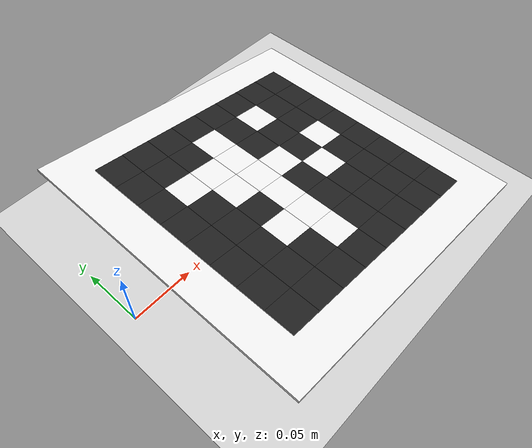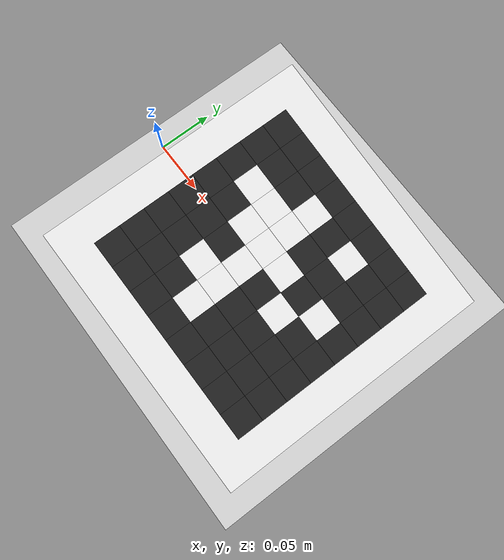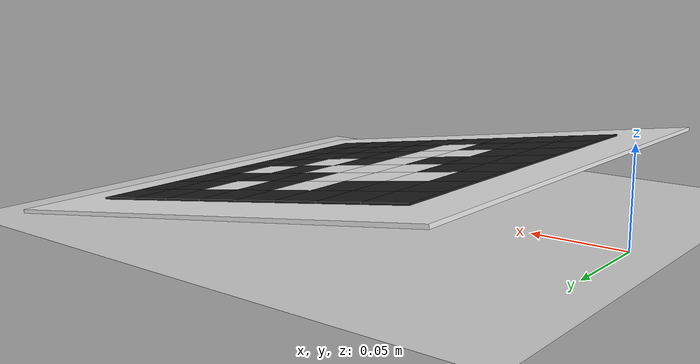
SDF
<?xml version="1.0"?>
<!-- Copyright 2026 EasyFly Project. SPDX-License-Identifier: Apache-2.0 -->
<sdf version="1.6">
  <world name="d5_precision_landing">
    <!-- Deterministic first-version visual fixture, not a lighting robustness test. -->
    <scene><shadows>false</shadows></scene>
    <include><uri>model://sun</uri></include>
    <include><uri>model://ground_plane</uri></include>
    <!-- Four native 1000Hz IMU samples feed the unchanged 250Hz MAVLink stream. -->
    <physics type="ode"><max_step_size>0.001</max_step_size><real_time_update_rate>1000</real_time_update_rate></physics>
    <model name="static_tag_7">
      <static>true</static>
      <pose>0.15 0 0.02 0 0.13962634015954636 0</pose>
      <link name="pad">
        <visual name="white_margin">
          <pose>0 0 -0.001 0 0 0</pose>
          <geometry><box><size>0.26 0.26 0.002</size></box></geometry>
          <material><script><uri>file://media/materials/scripts/gazebo.material</uri><name>Gazebo/White</name></script></material>
        </visual>
        <visual name="cell_0_0">
          <pose>-0.08750 0.08750 0.0005 0 0 0</pose>
          <geometry><box><size>0.025 0.025 0.001</size></box></geometry>
          <material><script><uri>file://media/materials/scripts/gazebo.material</uri><name>Gazebo/Black</name></script></material>
        </visual>
        <visual name="cell_0_1">
          <pose>-0.06250 0.08750 0.0005 0 0 0</pose>
          <geometry><box><size>0.025 0.025 0.001</size></box></geometry>
          <material><script><uri>file://media/materials/scripts/gazebo.material</uri><name>Gazebo/Black</name></script></material>
        </visual>
        <visual name="cell_0_2">
          <pose>-0.03750 0.08750 0.0005 0 0 0</pose>
          <geometry><box><size>0.025 0.025 0.001</size></box></geometry>
          <material><script><uri>file://media/materials/scripts/gazebo.material</uri><name>Gazebo/Black</name></script></material>
        </visual>
        <visual name="cell_0_3">
          <pose>-0.01250 0.08750 0.0005 0 0 0</pose>
          <geometry><box><size>0.025 0.025 0.001</size></box></geometry>
          <material><script><uri>file://media/materials/scripts/gazebo.material</uri><name>Gazebo/Black</name></script></material>
        </visual>
        <visual name="cell_0_4">
          <pose>0.01250 0.08750 0.0005 0 0 0</pose>
          <geometry><box><size>0.025 0.025 0.001</size></box></geometry>
          <material><script><uri>file://media/materials/scripts/gazebo.material</uri><name>Gazebo/Black</name></script></material>
        </visual>
        <visual name="cell_0_5">
          <pose>0.03750 0.08750 0.0005 0 0 0</pose>
          <geometry><box><size>0.025 0.025 0.001</size></box></geometry>
          <material><script><uri>file://media/materials/scripts/gazebo.material</uri><name>Gazebo/Black</name></script></material>
        </visual>
        <visual name="cell_0_6">
          <pose>0.06250 0.08750 0.0005 0 0 0</pose>
          <geometry><box><size>0.025 0.025 0.001</size></box></geometry>
          <material><script><uri>file://media/materials/scripts/gazebo.material</uri><name>Gazebo/Black</name></script></material>
        </visual>
        <visual name="cell_0_7">
          <pose>0.08750 0.08750 0.0005 0 0 0</pose>
          <geometry><box><size>0.025 0.025 0.001</size></box></geometry>
          <material><script><uri>file://media/materials/scripts/gazebo.material</uri><name>Gazebo/Black</name></script></material>
        </visual>
        <visual name="cell_1_0">
          <pose>-0.08750 0.06250 0.0005 0 0 0</pose>
          <geometry><box><size>0.025 0.025 0.001</size></box></geometry>
          <material><script><uri>file://media/materials/scripts/gazebo.material</uri><name>Gazebo/Black</name></script></material>
        </visual>
        <visual name="cell_1_1">
          <pose>-0.06250 0.06250 0.0005 0 0 0</pose>
          <geometry><box><size>0.025 0.025 0.001</size></box></geometry>
          <material><script><uri>file://media/materials/scripts/gazebo.material</uri><name>Gazebo/Black</name></script></material>
        </visual>
        <visual name="cell_1_2">
          <pose>-0.03750 0.06250 0.0005 0 0 0</pose>
          <geometry><box><size>0.025 0.025 0.001</size></box></geometry>
          <material><script><uri>file://media/materials/scripts/gazebo.material</uri><name>Gazebo/Black</name></script></material>
        </visual>
        <visual name="cell_1_3">
          <pose>-0.01250 0.06250 0.0005 0 0 0</pose>
          <geometry><box><size>0.025 0.025 0.001</size></box></geometry>
          <material><script><uri>file://media/materials/scripts/gazebo.material</uri><name>Gazebo/White</name></script></material>
        </visual>
        <visual name="cell_1_4">
          <pose>0.01250 0.06250 0.0005 0 0 0</pose>
          <geometry><box><size>0.025 0.025 0.001</size></box></geometry>
          <material><script><uri>file://media/materials/scripts/gazebo.material</uri><name>Gazebo/Black</name></script></material>
        </visual>
        <visual name="cell_1_5">
          <pose>0.03750 0.06250 0.0005 0 0 0</pose>
          <geometry><box><size>0.025 0.025 0.001</size></box></geometry>
          <material><script><uri>file://media/materials/scripts/gazebo.material</uri><name>Gazebo/White</name></script></material>
        </visual>
        <visual name="cell_1_6">
          <pose>0.06250 0.06250 0.0005 0 0 0</pose>
          <geometry><box><size>0.025 0.025 0.001</size></box></geometry>
          <material><script><uri>file://media/materials/scripts/gazebo.material</uri><name>Gazebo/Black</name></script></material>
        </visual>
        <visual name="cell_1_7">
          <pose>0.08750 0.06250 0.0005 0 0 0</pose>
          <geometry><box><size>0.025 0.025 0.001</size></box></geometry>
          <material><script><uri>file://media/materials/scripts/gazebo.material</uri><name>Gazebo/Black</name></script></material>
        </visual>
        <visual name="cell_2_0">
          <pose>-0.08750 0.03750 0.0005 0 0 0</pose>
          <geometry><box><size>0.025 0.025 0.001</size></box></geometry>
          <material><script><uri>file://media/materials/scripts/gazebo.material</uri><name>Gazebo/Black</name></script></material>
        </visual>
        <visual name="cell_2_1">
          <pose>-0.06250 0.03750 0.0005 0 0 0</pose>
          <geometry><box><size>0.025 0.025 0.001</size></box></geometry>
          <material><script><uri>file://media/materials/scripts/gazebo.material</uri><name>Gazebo/White</name></script></material>
        </visual>
        <visual name="cell_2_2">
          <pose>-0.03750 0.03750 0.0005 0 0 0</pose>
          <geometry><box><size>0.025 0.025 0.001</size></box></geometry>
          <material><script><uri>file://media/materials/scripts/gazebo.material</uri><name>Gazebo/White</name></script></material>
        </visual>
        <visual name="cell_2_3">
          <pose>-0.01250 0.03750 0.0005 0 0 0</pose>
          <geometry><box><size>0.025 0.025 0.001</size></box></geometry>
          <material><script><uri>file://media/materials/scripts/gazebo.material</uri><name>Gazebo/White</name></script></material>
        </visual>
        <visual name="cell_2_4">
          <pose>0.01250 0.03750 0.0005 0 0 0</pose>
          <geometry><box><size>0.025 0.025 0.001</size></box></geometry>
          <material><script><uri>file://media/materials/scripts/gazebo.material</uri><name>Gazebo/Black</name></script></material>
        </visual>
        <visual name="cell_2_5">
          <pose>0.03750 0.03750 0.0005 0 0 0</pose>
          <geometry><box><size>0.025 0.025 0.001</size></box></geometry>
          <material><script><uri>file://media/materials/scripts/gazebo.material</uri><name>Gazebo/Black</name></script></material>
        </visual>
        <visual name="cell_2_6">
          <pose>0.06250 0.03750 0.0005 0 0 0</pose>
          <geometry><box><size>0.025 0.025 0.001</size></box></geometry>
          <material><script><uri>file://media/materials/scripts/gazebo.material</uri><name>Gazebo/Black</name></script></material>
        </visual>
        <visual name="cell_2_7">
          <pose>0.08750 0.03750 0.0005 0 0 0</pose>
          <geometry><box><size>0.025 0.025 0.001</size></box></geometry>
          <material><script><uri>file://media/materials/scripts/gazebo.material</uri><name>Gazebo/Black</name></script></material>
        </visual>
        <visual name="cell_3_0">
          <pose>-0.08750 0.01250 0.0005 0 0 0</pose>
          <geometry><box><size>0.025 0.025 0.001</size></box></geometry>
          <material><script><uri>file://media/materials/scripts/gazebo.material</uri><name>Gazebo/Black</name></script></material>
        </visual>
        <visual name="cell_3_1">
          <pose>-0.06250 0.01250 0.0005 0 0 0</pose>
          <geometry><box><size>0.025 0.025 0.001</size></box></geometry>
          <material><script><uri>file://media/materials/scripts/gazebo.material</uri><name>Gazebo/Black</name></script></material>
        </visual>
        <visual name="cell_3_2">
          <pose>-0.03750 0.01250 0.0005 0 0 0</pose>
          <geometry><box><size>0.025 0.025 0.001</size></box></geometry>
          <material><script><uri>file://media/materials/scripts/gazebo.material</uri><name>Gazebo/White</name></script></material>
        </visual>
        <visual name="cell_3_3">
          <pose>-0.01250 0.01250 0.0005 0 0 0</pose>
          <geometry><box><size>0.025 0.025 0.001</size></box></geometry>
          <material><script><uri>file://media/materials/scripts/gazebo.material</uri><name>Gazebo/White</name></script></material>
        </visual>
        <visual name="cell_3_4">
          <pose>0.01250 0.01250 0.0005 0 0 0</pose>
          <geometry><box><size>0.025 0.025 0.001</size></box></geometry>
          <material><script><uri>file://media/materials/scripts/gazebo.material</uri><name>Gazebo/White</name></script></material>
        </visual>
        <visual name="cell_3_5">
          <pose>0.03750 0.01250 0.0005 0 0 0</pose>
          <geometry><box><size>0.025 0.025 0.001</size></box></geometry>
          <material><script><uri>file://media/materials/scripts/gazebo.material</uri><name>Gazebo/Black</name></script></material>
        </visual>
        <visual name="cell_3_6">
          <pose>0.06250 0.01250 0.0005 0 0 0</pose>
          <geometry><box><size>0.025 0.025 0.001</size></box></geometry>
          <material><script><uri>file://media/materials/scripts/gazebo.material</uri><name>Gazebo/White</name></script></material>
        </visual>
        <visual name="cell_3_7">
          <pose>0.08750 0.01250 0.0005 0 0 0</pose>
          <geometry><box><size>0.025 0.025 0.001</size></box></geometry>
          <material><script><uri>file://media/materials/scripts/gazebo.material</uri><name>Gazebo/Black</name></script></material>
        </visual>
        <visual name="cell_4_0">
          <pose>-0.08750 -0.01250 0.0005 0 0 0</pose>
          <geometry><box><size>0.025 0.025 0.001</size></box></geometry>
          <material><script><uri>file://media/materials/scripts/gazebo.material</uri><name>Gazebo/Black</name></script></material>
        </visual>
        <visual name="cell_4_1">
          <pose>-0.06250 -0.01250 0.0005 0 0 0</pose>
          <geometry><box><size>0.025 0.025 0.001</size></box></geometry>
          <material><script><uri>file://media/materials/scripts/gazebo.material</uri><name>Gazebo/Black</name></script></material>
        </visual>
        <visual name="cell_4_2">
          <pose>-0.03750 -0.01250 0.0005 0 0 0</pose>
          <geometry><box><size>0.025 0.025 0.001</size></box></geometry>
          <material><script><uri>file://media/materials/scripts/gazebo.material</uri><name>Gazebo/Black</name></script></material>
        </visual>
        <visual name="cell_4_3">
          <pose>-0.01250 -0.01250 0.0005 0 0 0</pose>
          <geometry><box><size>0.025 0.025 0.001</size></box></geometry>
          <material><script><uri>file://media/materials/scripts/gazebo.material</uri><name>Gazebo/White</name></script></material>
        </visual>
        <visual name="cell_4_4">
          <pose>0.01250 -0.01250 0.0005 0 0 0</pose>
          <geometry><box><size>0.025 0.025 0.001</size></box></geometry>
          <material><script><uri>file://media/materials/scripts/gazebo.material</uri><name>Gazebo/Black</name></script></material>
        </visual>
        <visual name="cell_4_5">
          <pose>0.03750 -0.01250 0.0005 0 0 0</pose>
          <geometry><box><size>0.025 0.025 0.001</size></box></geometry>
          <material><script><uri>file://media/materials/scripts/gazebo.material</uri><name>Gazebo/White</name></script></material>
        </visual>
        <visual name="cell_4_6">
          <pose>0.06250 -0.01250 0.0005 0 0 0</pose>
          <geometry><box><size>0.025 0.025 0.001</size></box></geometry>
          <material><script><uri>file://media/materials/scripts/gazebo.material</uri><name>Gazebo/Black</name></script></material>
        </visual>
        <visual name="cell_4_7">
          <pose>0.08750 -0.01250 0.0005 0 0 0</pose>
          <geometry><box><size>0.025 0.025 0.001</size></box></geometry>
          <material><script><uri>file://media/materials/scripts/gazebo.material</uri><name>Gazebo/Black</name></script></material>
        </visual>
        <visual name="cell_5_0">
          <pose>-0.08750 -0.03750 0.0005 0 0 0</pose>
          <geometry><box><size>0.025 0.025 0.001</size></box></geometry>
          <material><script><uri>file://media/materials/scripts/gazebo.material</uri><name>Gazebo/Black</name></script></material>
        </visual>
        <visual name="cell_5_1">
          <pose>-0.06250 -0.03750 0.0005 0 0 0</pose>
          <geometry><box><size>0.025 0.025 0.001</size></box></geometry>
          <material><script><uri>file://media/materials/scripts/gazebo.material</uri><name>Gazebo/Black</name></script></material>
        </visual>
        <visual name="cell_5_2">
          <pose>-0.03750 -0.03750 0.0005 0 0 0</pose>
          <geometry><box><size>0.025 0.025 0.001</size></box></geometry>
          <material><script><uri>file://media/materials/scripts/gazebo.material</uri><name>Gazebo/White</name></script></material>
        </visual>
        <visual name="cell_5_3">
          <pose>-0.01250 -0.03750 0.0005 0 0 0</pose>
          <geometry><box><size>0.025 0.025 0.001</size></box></geometry>
          <material><script><uri>file://media/materials/scripts/gazebo.material</uri><name>Gazebo/White</name></script></material>
        </visual>
        <visual name="cell_5_4">
          <pose>0.01250 -0.03750 0.0005 0 0 0</pose>
          <geometry><box><size>0.025 0.025 0.001</size></box></geometry>
          <material><script><uri>file://media/materials/scripts/gazebo.material</uri><name>Gazebo/Black</name></script></material>
        </visual>
        <visual name="cell_5_5">
          <pose>0.03750 -0.03750 0.0005 0 0 0</pose>
          <geometry><box><size>0.025 0.025 0.001</size></box></geometry>
          <material><script><uri>file://media/materials/scripts/gazebo.material</uri><name>Gazebo/Black</name></script></material>
        </visual>
        <visual name="cell_5_6">
          <pose>0.06250 -0.03750 0.0005 0 0 0</pose>
          <geometry><box><size>0.025 0.025 0.001</size></box></geometry>
          <material><script><uri>file://media/materials/scripts/gazebo.material</uri><name>Gazebo/Black</name></script></material>
        </visual>
        <visual name="cell_5_7">
          <pose>0.08750 -0.03750 0.0005 0 0 0</pose>
          <geometry><box><size>0.025 0.025 0.001</size></box></geometry>
          <material><script><uri>file://media/materials/scripts/gazebo.material</uri><name>Gazebo/Black</name></script></material>
        </visual>
        <visual name="cell_6_0">
          <pose>-0.08750 -0.06250 0.0005 0 0 0</pose>
          <geometry><box><size>0.025 0.025 0.001</size></box></geometry>
          <material><script><uri>file://media/materials/scripts/gazebo.material</uri><name>Gazebo/Black</name></script></material>
        </visual>
        <visual name="cell_6_1">
          <pose>-0.06250 -0.06250 0.0005 0 0 0</pose>
          <geometry><box><size>0.025 0.025 0.001</size></box></geometry>
          <material><script><uri>file://media/materials/scripts/gazebo.material</uri><name>Gazebo/Black</name></script></material>
        </visual>
        <visual name="cell_6_2">
          <pose>-0.03750 -0.06250 0.0005 0 0 0</pose>
          <geometry><box><size>0.025 0.025 0.001</size></box></geometry>
          <material><script><uri>file://media/materials/scripts/gazebo.material</uri><name>Gazebo/Black</name></script></material>
        </visual>
        <visual name="cell_6_3">
          <pose>-0.01250 -0.06250 0.0005 0 0 0</pose>
          <geometry><box><size>0.025 0.025 0.001</size></box></geometry>
          <material><script><uri>file://media/materials/scripts/gazebo.material</uri><name>Gazebo/White</name></script></material>
        </visual>
        <visual name="cell_6_4">
          <pose>0.01250 -0.06250 0.0005 0 0 0</pose>
          <geometry><box><size>0.025 0.025 0.001</size></box></geometry>
          <material><script><uri>file://media/materials/scripts/gazebo.material</uri><name>Gazebo/Black</name></script></material>
        </visual>
        <visual name="cell_6_5">
          <pose>0.03750 -0.06250 0.0005 0 0 0</pose>
          <geometry><box><size>0.025 0.025 0.001</size></box></geometry>
          <material><script><uri>file://media/materials/scripts/gazebo.material</uri><name>Gazebo/Black</name></script></material>
        </visual>
        <visual name="cell_6_6">
          <pose>0.06250 -0.06250 0.0005 0 0 0</pose>
          <geometry><box><size>0.025 0.025 0.001</size></box></geometry>
          <material><script><uri>file://media/materials/scripts/gazebo.material</uri><name>Gazebo/Black</name></script></material>
        </visual>
        <visual name="cell_6_7">
          <pose>0.08750 -0.06250 0.0005 0 0 0</pose>
          <geometry><box><size>0.025 0.025 0.001</size></box></geometry>
          <material><script><uri>file://media/materials/scripts/gazebo.material</uri><name>Gazebo/Black</name></script></material>
        </visual>
        <visual name="cell_7_0">
          <pose>-0.08750 -0.08750 0.0005 0 0 0</pose>
          <geometry><box><size>0.025 0.025 0.001</size></box></geometry>
          <material><script><uri>file://media/materials/scripts/gazebo.material</uri><name>Gazebo/Black</name></script></material>
        </visual>
        <visual name="cell_7_1">
          <pose>-0.06250 -0.08750 0.0005 0 0 0</pose>
          <geometry><box><size>0.025 0.025 0.001</size></box></geometry>
          <material><script><uri>file://media/materials/scripts/gazebo.material</uri><name>Gazebo/Black</name></script></material>
        </visual>
        <visual name="cell_7_2">
          <pose>-0.03750 -0.08750 0.0005 0 0 0</pose>
          <geometry><box><size>0.025 0.025 0.001</size></box></geometry>
          <material><script><uri>file://media/materials/scripts/gazebo.material</uri><name>Gazebo/Black</name></script></material>
        </visual>
        <visual name="cell_7_3">
          <pose>-0.01250 -0.08750 0.0005 0 0 0</pose>
          <geometry><box><size>0.025 0.025 0.001</size></box></geometry>
          <material><script><uri>file://media/materials/scripts/gazebo.material</uri><name>Gazebo/Black</name></script></material>
        </visual>
        <visual name="cell_7_4">
          <pose>0.01250 -0.08750 0.0005 0 0 0</pose>
          <geometry><box><size>0.025 0.025 0.001</size></box></geometry>
          <material><script><uri>file://media/materials/scripts/gazebo.material</uri><name>Gazebo/Black</name></script></material>
        </visual>
        <visual name="cell_7_5">
          <pose>0.03750 -0.08750 0.0005 0 0 0</pose>
          <geometry><box><size>0.025 0.025 0.001</size></box></geometry>
          <material><script><uri>file://media/materials/scripts/gazebo.material</uri><name>Gazebo/Black</name></script></material>
        </visual>
        <visual name="cell_7_6">
          <pose>0.06250 -0.08750 0.0005 0 0 0</pose>
          <geometry><box><size>0.025 0.025 0.001</size></box></geometry>
          <material><script><uri>file://media/materials/scripts/gazebo.material</uri><name>Gazebo/Black</name></script></material>
        </visual>
        <visual name="cell_7_7">
          <pose>0.08750 -0.08750 0.0005 0 0 0</pose>
          <geometry><box><size>0.025 0.025 0.001</size></box></geometry>
          <material><script><uri>file://media/materials/scripts/gazebo.material</uri><name>Gazebo/Black</name></script></material>
        </visual>
      </link>
    </model>
  </world>
</sdf>
